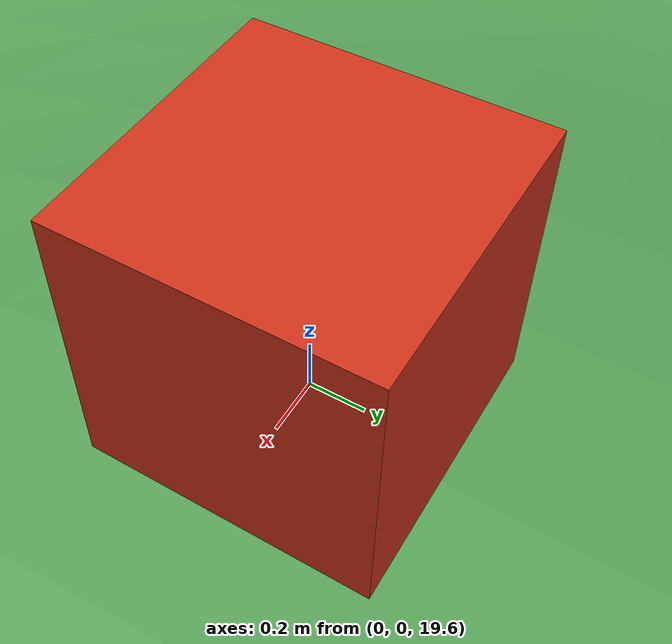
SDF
<?xml version="1.0"?>
<sdf version="1.10">
  <world name="dem_terrain">
    <physics name="default_physics" type="ignored">
      <max_step_size>0.001</max_step_size>
      <real_time_factor>1.0</real_time_factor>
    </physics>

    <plugin filename="gz-sim-physics-system" name="gz::sim::systems::Physics"/>
    <plugin filename="gz-sim-user-commands-system" name="gz::sim::systems::UserCommands"/>
    <plugin filename="gz-sim-scene-broadcaster-system" name="gz::sim::systems::SceneBroadcaster"/>

    <light name="sun" type="directional">
      <cast_shadows>true</cast_shadows>
      <pose>0 0 20 0 0 0</pose>
      <diffuse>0.8 0.8 0.8 1</diffuse>
      <specular>0.2 0.2 0.2 1</specular>
      <direction>-0.5 0.1 -0.9</direction>
    </light>

    <include>
      <uri>model://dem_terrain</uri>
      <pose>-50 -50 0 0 0 0</pose>
    </include>

    <include>
      <uri>model://falling_box</uri>
      <pose>0 0 20 0 0 0</pose>
    </include>
  </world>
</sdf>

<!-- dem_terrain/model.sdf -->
<sdf version="1.10">
  <model name="dem_terrain">
    <static>true</static>
    <link name="terrain_link">
      <visual name="terrain_visual">
        <geometry>
          <mesh>
            <uri>../../data/dae/example_dem_100m.dae</uri>
            <scale>1 1 1</scale>
          </mesh>
        </geometry>
        <material>
          <ambient>0.35 0.65 0.35 1</ambient>
          <diffuse>0.35 0.65 0.35 1</diffuse>
        </material>
      </visual>
      <collision name="terrain_collision">
        <geometry>
          <mesh>
            <uri>../../data/dae/example_dem_100m.dae</uri>
            <scale>1 1 1</scale>
          </mesh>
        </geometry>
      </collision>
    </link>
  </model>
</sdf>

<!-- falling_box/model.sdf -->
<sdf version="1.10">
  <model name="falling_box">
    <static>false</static>
    <link name="box_link">
      <inertial>
        <mass>1.0</mass>
        <inertia>
          <ixx>0.1667</ixx>
          <iyy>0.1667</iyy>
          <izz>0.1667</izz>
        </inertia>
      </inertial>
      <visual name="box_visual">
        <geometry>
          <box>
            <size>1 1 1</size>
          </box>
        </geometry>
        <material>
          <diffuse>0.8 0.2 0.1 1</diffuse>
        </material>
      </visual>
      <collision name="box_collision">
        <geometry>
          <box>
            <size>1 1 1</size>
          </box>
        </geometry>
      </collision>
    </link>
  </model>
</sdf>
